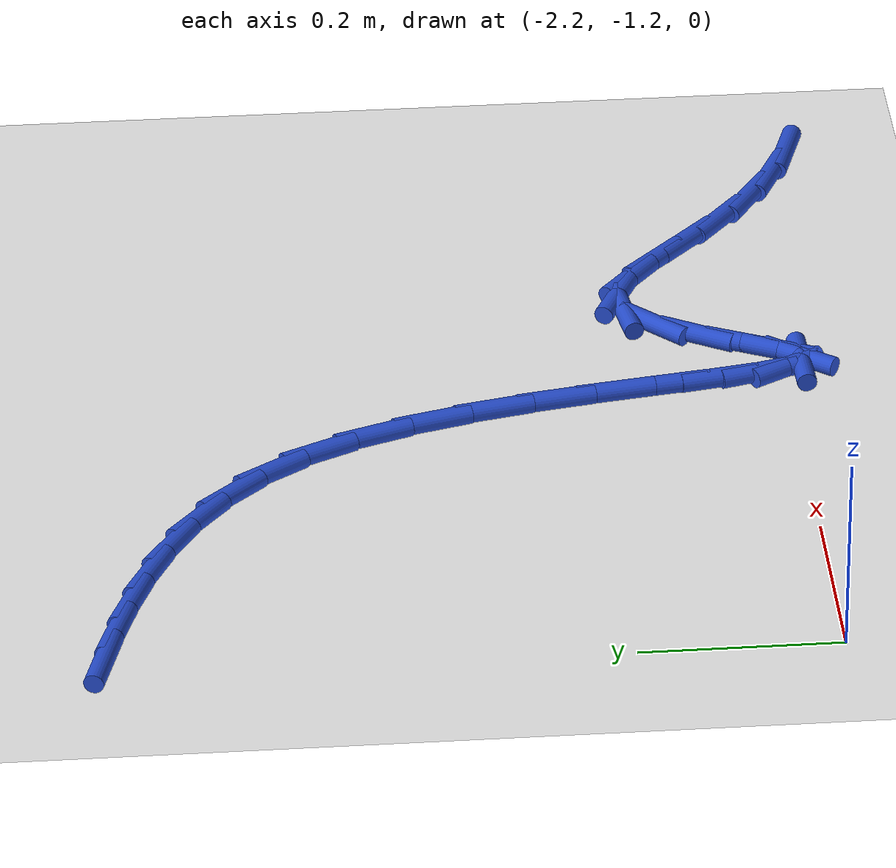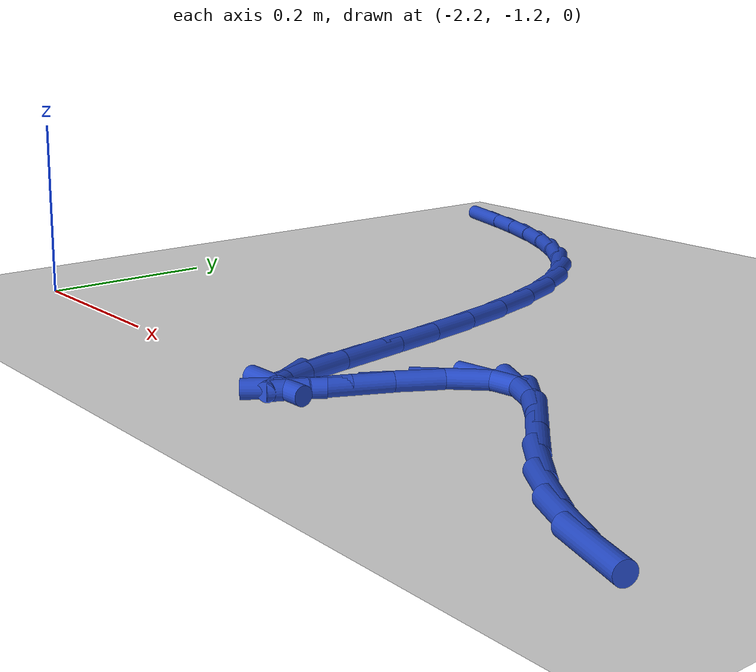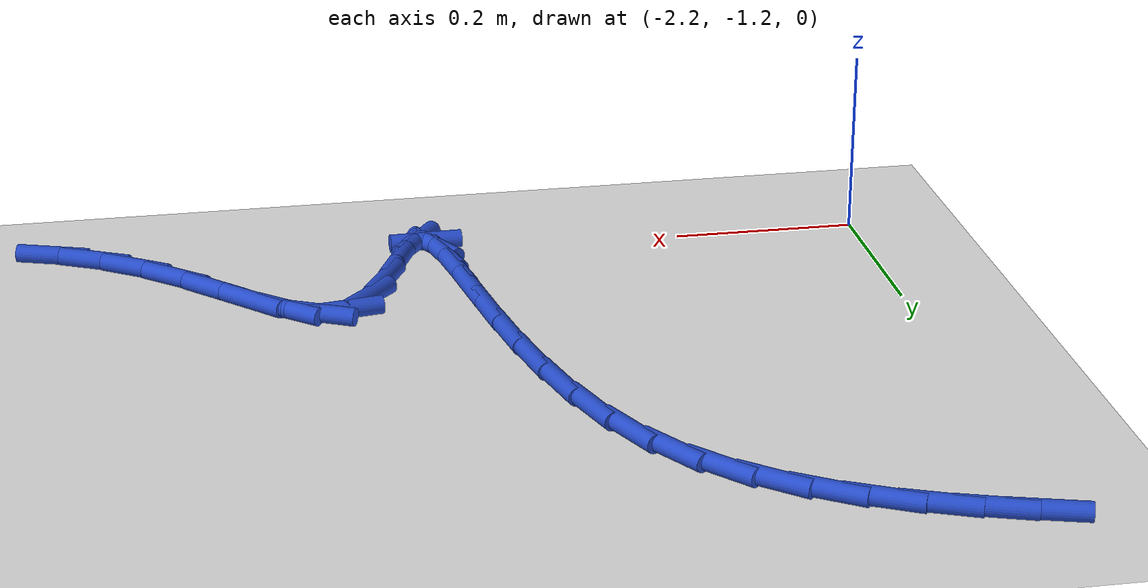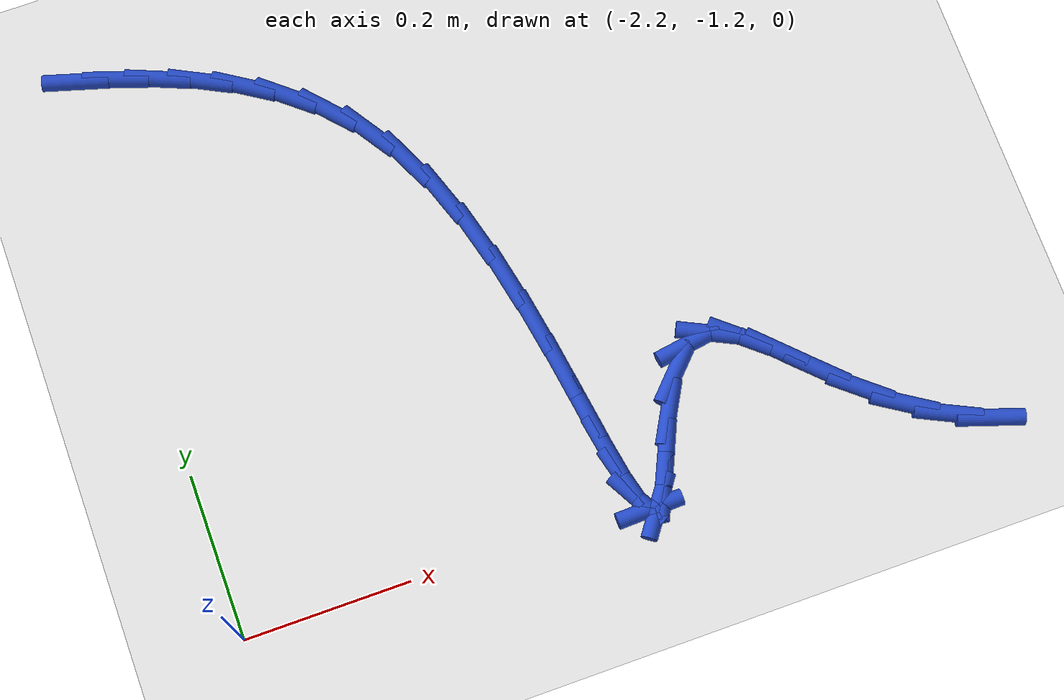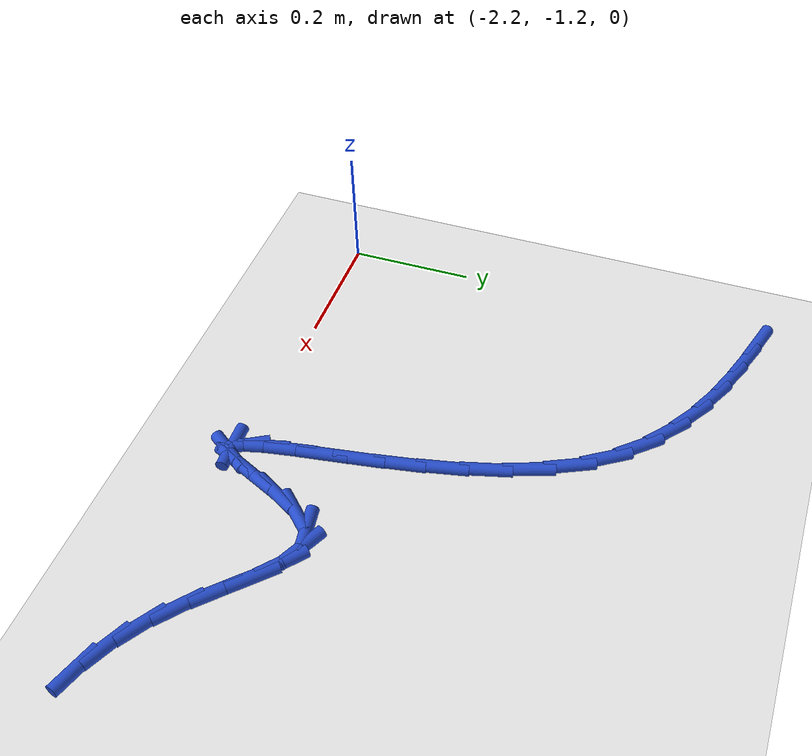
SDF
<sdf version="1.6">
 <world name="default">
  <model name="ground_plane">
   <static>1</static>
   <link name="link">
    <collision name="collision">
     <geometry><plane><normal>0 0 1</normal><size>100 100</size></plane></geometry>
     <surface><friction><ode><mu>100</mu><mu2>50</mu2></ode></friction></surface>
    </collision>
    <visual name="visual">
     <cast_shadows>0</cast_shadows>
     <geometry><plane><normal>0 0 1</normal><size>100 100</size></plane></geometry>
     <material>
      <script><uri>file://media/materials/scripts/gazebo.material</uri><name>Gazebo/WhiteGlow</name></script>
     </material>
    </visual>
   </link>
  </model>
  <model name="line">
   <link name="link_122">
    <pose>-2.184361438575416 -0.49433795415259824 0.01 0 1.57 -0.28565210446264355</pose>
    <collision name="collision">
     <geometry><cylinder><radius>0.01</radius><length>0.08</length></cylinder></geometry>
    </collision>
    <visual name="visual">
     <material>
      <script><name>Gazebo/Blue</name><uri>file://media/materials/scripts/gazebo.material</uri></script>
     </material>
     <geometry><cylinder><radius>0.01</radius><length>0.08</length></cylinder></geometry>
    </visual>
   </link>
   <link name="link_123">
    <pose>-2.1379317910600424 -0.5079735902099958 0.01 0 1.57 -0.32826283731042083</pose>
    <collision name="collision">
     <geometry><cylinder><radius>0.01</radius><length>0.08</length></cylinder></geometry>
    </collision>
    <visual name="visual">
     <material>
      <script><name>Gazebo/Blue</name><uri>file://media/materials/scripts/gazebo.material</uri></script>
     </material>
     <geometry><cylinder><radius>0.01</radius><length>0.08</length></cylinder></geometry>
    </visual>
   </link>
   <link name="link_124">
    <pose>-2.090292087886576 -0.5241989607777661 0.01 0 1.57 -0.38998099330129476</pose>
    <collision name="collision">
     <geometry><cylinder><radius>0.01</radius><length>0.08</length></cylinder></geometry>
    </collision>
    <visual name="visual">
     <material>
      <script><name>Gazebo/Blue</name><uri>file://media/materials/scripts/gazebo.material</uri></script>
     </material>
     <geometry><cylinder><radius>0.01</radius><length>0.08</length></cylinder></geometry>
    </visual>
   </link>
   <link name="link_125">
    <pose>-2.0425520192814623 -0.5438216899381036 0.01 0 1.57 -0.4715312053376735</pose>
    <collision name="collision">
     <geometry><cylinder><radius>0.01</radius><length>0.08</length></cylinder></geometry>
    </collision>
    <visual name="visual">
     <material>
      <script><name>Gazebo/Blue</name><uri>file://media/materials/scripts/gazebo.material</uri></script>
     </material>
     <geometry><cylinder><radius>0.01</radius><length>0.08</length></cylinder></geometry>
    </visual>
   </link>
   <link name="link_126">
    <pose>-1.9958212754711477 -0.5676494017732027 0.01 0 1.57 -0.5738924250984505</pose>
    <collision name="collision">
     <geometry><cylinder><radius>0.01</radius><length>0.08</length></cylinder></geometry>
    </collision>
    <visual name="visual">
     <material>
      <script><name>Gazebo/Blue</name><uri>file://media/materials/scripts/gazebo.material</uri></script>
     </material>
     <geometry><cylinder><radius>0.01</radius><length>0.08</length></cylinder></geometry>
    </visual>
   </link>
   <link name="link_127">
    <pose>-1.9512095466820776 -0.5964897203652576 0.01 0 1.57 -0.6972244586254711</pose>
    <collision name="collision">
     <geometry><cylinder><radius>0.01</radius><length>0.08</length></cylinder></geometry>
    </collision>
    <visual name="visual">
     <material>
      <script><name>Gazebo/Blue</name><uri>file://media/materials/scripts/gazebo.material</uri></script>
     </material>
     <geometry><cylinder><radius>0.01</radius><length>0.08</length></cylinder></geometry>
    </visual>
   </link>
   <link name="link_128">
    <pose>-1.909826523140699 -0.6311502697964628 0.01 0 1.57 -0.8395213290164908</pose>
    <collision name="collision">
     <geometry><cylinder><radius>0.01</radius><length>0.08</length></cylinder></geometry>
    </collision>
    <visual name="visual">
     <material>
      <script><name>Gazebo/Blue</name><uri>file://media/materials/scripts/gazebo.material</uri></script>
     </material>
     <geometry><cylinder><radius>0.01</radius><length>0.08</length></cylinder></geometry>
    </visual>
   </link>
   <link name="link_129">
    <pose>-1.872781895073457 -0.6724386741490127 0.01 0 1.57 -0.994944159421937</pose>
    <collision name="collision">
     <geometry><cylinder><radius>0.01</radius><length>0.08</length></cylinder></geometry>
    </collision>
    <visual name="visual">
     <material>
      <script><name>Gazebo/Blue</name><uri>file://media/materials/scripts/gazebo.material</uri></script>
     </material>
     <geometry><cylinder><radius>0.01</radius><length>0.08</length></cylinder></geometry>
    </visual>
   </link>
   <link name="link_130">
    <pose>-1.8411670851865451 -0.7211325632780391 0.01 0 1.57 -1.1355411119451633</pose>
    <collision name="collision">
     <geometry><cylinder><radius>0.01</radius><length>0.08</length></cylinder></geometry>
    </collision>
    <visual name="visual">
     <material>
      <script><name>Gazebo/Blue</name><uri>file://media/materials/scripts/gazebo.material</uri></script>
     </material>
     <geometry><cylinder><radius>0.01</radius><length>0.08</length></cylinder></geometry>
    </visual>
   </link>
   <link name="link_131">
    <pose>-1.8153056858490542 -0.7767488333891253 0.01 0 1.57 -1.2387001858734015</pose>
    <collision name="collision">
     <geometry><cylinder><radius>0.01</radius><length>0.08</length></cylinder></geometry>
    </collision>
    <visual name="visual">
     <material>
      <script><name>Gazebo/Blue</name><uri>file://media/materials/scripts/gazebo.material</uri></script>
     </material>
     <geometry><cylinder><radius>0.01</radius><length>0.08</length></cylinder></geometry>
    </visual>
   </link>
   <link name="link_132">
    <pose>-1.7944891363108404 -0.8371096440956332 0.01 0 1.57 -1.3131102194681292</pose>
    <collision name="collision">
     <geometry><cylinder><radius>0.01</radius><length>0.08</length></cylinder></geometry>
    </collision>
    <visual name="visual">
     <material>
      <script><name>Gazebo/Blue</name><uri>file://media/materials/scripts/gazebo.material</uri></script>
     </material>
     <geometry><cylinder><radius>0.01</radius><length>0.08</length></cylinder></geometry>
    </visual>
   </link>
   <link name="link_133">
    <pose>-1.7779362891618624 -0.8999179718525911 0.01 0 1.57 -1.3661032466133973</pose>
    <collision name="collision">
     <geometry><cylinder><radius>0.01</radius><length>0.08</length></cylinder></geometry>
    </collision>
    <visual name="visual">
     <material>
      <script><name>Gazebo/Blue</name><uri>file://media/materials/scripts/gazebo.material</uri></script>
     </material>
     <geometry><cylinder><radius>0.01</radius><length>0.08</length></cylinder></geometry>
    </visual>
   </link>
   <link name="link_134">
    <pose>-1.7648659969920806 -0.9628767931150278 0.01 0 1.57 -1.4019140387732072</pose>
    <collision name="collision">
     <geometry><cylinder><radius>0.01</radius><length>0.08</length></cylinder></geometry>
    </collision>
    <visual name="visual">
     <material>
      <script><name>Gazebo/Blue</name><uri>file://media/materials/scripts/gazebo.material</uri></script>
     </material>
     <geometry><cylinder><radius>0.01</radius><length>0.08</length></cylinder></geometry>
    </visual>
   </link>
   <link name="link_135">
    <pose>-1.7544971123914537 -1.0236890843379711 0.01 0 1.57 -1.4220223865522879</pose>
    <collision name="collision">
     <geometry><cylinder><radius>0.01</radius><length>0.08</length></cylinder></geometry>
    </collision>
    <visual name="visual">
     <material>
      <script><name>Gazebo/Blue</name><uri>file://media/materials/scripts/gazebo.material</uri></script>
     </material>
     <geometry><cylinder><radius>0.01</radius><length>0.08</length></cylinder></geometry>
    </visual>
   </link>
   <link name="link_136">
    <pose>-1.7460484879499414 -1.08005782197645 0.01 0 1.57 -1.4245621340071937</pose>
    <collision name="collision">
     <geometry><cylinder><radius>0.01</radius><length>0.08</length></cylinder></geometry>
    </collision>
    <visual name="visual">
     <material>
      <script><name>Gazebo/Blue</name><uri>file://media/materials/scripts/gazebo.material</uri></script>
     </material>
     <geometry><cylinder><radius>0.01</radius><length>0.08</length></cylinder></geometry>
    </visual>
   </link>
   <link name="link_137">
    <pose>-1.7387389762575025 -1.1296859824854923 0.01 0 1.57 -1.4011816469819414</pose>
    <collision name="collision">
     <geometry><cylinder><radius>0.01</radius><length>0.08</length></cylinder></geometry>
    </collision>
    <visual name="visual">
     <material>
      <script><name>Gazebo/Blue</name><uri>file://media/materials/scripts/gazebo.material</uri></script>
     </material>
     <geometry><cylinder><radius>0.01</radius><length>0.08</length></cylinder></geometry>
    </visual>
   </link>
   <link name="link_138">
    <pose>-1.7317874299040967 -1.1702765423201267 0.01 0 1.57 -1.3238644421237749</pose>
    <collision name="collision">
     <geometry><cylinder><radius>0.01</radius><length>0.08</length></cylinder></geometry>
    </collision>
    <visual name="visual">
     <material>
      <script><name>Gazebo/Blue</name><uri>file://media/materials/scripts/gazebo.material</uri></script>
     </material>
     <geometry><cylinder><radius>0.01</radius><length>0.08</length></cylinder></geometry>
    </visual>
   </link>
   <link name="link_139">
    <pose>-1.7244127014796833 -1.199532477935381 0.01 0 1.57 -1.0686560884903236</pose>
    <collision name="collision">
     <geometry><cylinder><radius>0.01</radius><length>0.08</length></cylinder></geometry>
    </collision>
    <visual name="visual">
     <material>
      <script><name>Gazebo/Blue</name><uri>file://media/materials/scripts/gazebo.material</uri></script>
     </material>
     <geometry><cylinder><radius>0.01</radius><length>0.08</length></cylinder></geometry>
    </visual>
   </link>
   <link name="link_140">
    <pose>-1.715833643574222 -1.2151567657862847 0.01 0 1.57 0.02880384997386008</pose>
    <collision name="collision">
     <geometry><cylinder><radius>0.01</radius><length>0.08</length></cylinder></geometry>
    </collision>
    <visual name="visual">
     <material>
      <script><name>Gazebo/Blue</name><uri>file://media/materials/scripts/gazebo.material</uri></script>
     </material>
     <geometry><cylinder><radius>0.01</radius><length>0.08</length></cylinder></geometry>
    </visual>
   </link>
   <link name="link_141">
    <pose>-1.7052691087776717 -1.214852382327865 0.01 0 1.57 0.9470987776433557</pose>
    <collision name="collision">
     <geometry><cylinder><radius>0.01</radius><length>0.08</length></cylinder></geometry>
    </collision>
    <visual name="visual">
     <material>
      <script><name>Gazebo/Blue</name><uri>file://media/materials/scripts/gazebo.material</uri></script>
     </material>
     <geometry><cylinder><radius>0.01</radius><length>0.08</length></cylinder></geometry>
    </visual>
   </link>
   <link name="link_142">
    <pose>-1.6919380929068764 -1.1963243669047987 0.01 0 1.57 1.1381280214256002</pose>
    <collision name="collision">
     <geometry><cylinder><radius>0.01</radius><length>0.08</length></cylinder></geometry>
    </collision>
    <visual name="visual">
     <material>
      <script><name>Gazebo/Blue</name><uri>file://media/materials/scripts/gazebo.material</uri></script>
     </material>
     <geometry><cylinder><radius>0.01</radius><length>0.08</length></cylinder></geometry>
    </visual>
   </link>
   <link name="link_143">
    <pose>-1.675264003974149 -1.160221897481186 0.01 0 1.57 1.1463221863602724</pose>
    <collision name="collision">
     <geometry><cylinder><radius>0.01</radius><length>0.08</length></cylinder></geometry>
    </collision>
    <visual name="visual">
     <material>
      <script><name>Gazebo/Blue</name><uri>file://media/materials/scripts/gazebo.material</uri></script>
     </material>
     <geometry><cylinder><radius>0.01</radius><length>0.08</length></cylinder></geometry>
    </visual>
   </link>
   <link name="link_144">
    <pose>-1.6552823158404901 -1.1160097058025982 0.01 0 1.57 1.0592045904168628</pose>
    <collision name="collision">
     <geometry><cylinder><radius>0.01</radius><length>0.08</length></cylinder></geometry>
    </collision>
    <visual name="visual">
     <material>
      <script><name>Gazebo/Blue</name><uri>file://media/materials/scripts/gazebo.material</uri></script>
     </material>
     <geometry><cylinder><radius>0.01</radius><length>0.08</length></cylinder></geometry>
    </visual>
   </link>
   <link name="link_145">
    <pose>-1.6321425729838221 -1.0747954770003194 0.01 0 1.57 0.8034282181039252</pose>
    <collision name="collision">
     <geometry><cylinder><radius>0.01</radius><length>0.08</length></cylinder></geometry>
    </collision>
    <visual name="visual">
     <material>
      <script><name>Gazebo/Blue</name><uri>file://media/materials/scripts/gazebo.material</uri></script>
     </material>
     <geometry><cylinder><radius>0.01</radius><length>0.08</length></cylinder></geometry>
    </visual>
   </link>
   <link name="link_146">
    <pose>-1.6059943198820694 -1.0476868962056365 0.01 0 1.57 0.15248464685349025</pose>
    <collision name="collision">
     <geometry><cylinder><radius>0.01</radius><length>0.08</length></cylinder></geometry>
    </collision>
    <visual name="visual">
     <material>
      <script><name>Gazebo/Blue</name><uri>file://media/materials/scripts/gazebo.material</uri></script>
     </material>
     <geometry><cylinder><radius>0.01</radius><length>0.08</length></cylinder></geometry>
    </visual>
   </link>
   <link name="link_147">
    <pose>-1.576986197557524 -1.043228998201677 0.01 0 1.57 -0.4505166098544359</pose>
    <collision name="collision">
     <geometry><cylinder><radius>0.01</radius><length>0.08</length></cylinder></geometry>
    </collision>
    <visual name="visual">
     <material>
      <script><name>Gazebo/Blue</name><uri>file://media/materials/scripts/gazebo.material</uri></script>
     </material>
     <geometry><cylinder><radius>0.01</radius><length>0.08</length></cylinder></geometry>
    </visual>
   </link>
   <link name="link_148">
    <pose>-1.5452628302951594 -1.05857334926038 0.01 0 1.57 -0.7041908228436067</pose>
    <collision name="collision">
     <geometry><cylinder><radius>0.01</radius><length>0.08</length></cylinder></geometry>
    </collision>
    <visual name="visual">
     <material>
      <script><name>Gazebo/Blue</name><uri>file://media/materials/scripts/gazebo.material</uri></script>
     </material>
     <geometry><cylinder><radius>0.01</radius><length>0.08</length></cylinder></geometry>
    </visual>
   </link>
   <link name="link_149">
    <pose>-1.5109677264839785 -1.0877062786403764 0.01 0 1.57 -0.7879022702656798</pose>
    <collision name="collision">
     <geometry><cylinder><radius>0.01</radius><length>0.08</length></cylinder></geometry>
    </collision>
    <visual name="visual">
     <material>
      <script><name>Gazebo/Blue</name><uri>file://media/materials/scripts/gazebo.material</uri></script>
     </material>
     <geometry><cylinder><radius>0.01</radius><length>0.08</length></cylinder></geometry>
    </visual>
   </link>
   <link name="link_150">
    <pose>-1.4742443944690702 -1.124613991044719 0.01 0 1.57 -0.7810294227627351</pose>
    <collision name="collision">
     <geometry><cylinder><radius>0.01</radius><length>0.08</length></cylinder></geometry>
    </collision>
    <visual name="visual">
     <material>
      <script><name>Gazebo/Blue</name><uri>file://media/materials/scripts/gazebo.material</uri></script>
     </material>
     <geometry><cylinder><radius>0.01</radius><length>0.08</length></cylinder></geometry>
    </visual>
   </link>
   <link name="link_151">
    <pose>-1.435236342595524 -1.1632826911764607 0.01 0 1.57 -0.6989223030192326</pose>
    <collision name="collision">
     <geometry><cylinder><radius>0.01</radius><length>0.08</length></cylinder></geometry>
    </collision>
    <visual name="visual">
     <material>
      <script><name>Gazebo/Blue</name><uri>file://media/materials/scripts/gazebo.material</uri></script>
     </material>
     <geometry><cylinder><radius>0.01</radius><length>0.08</length></cylinder></geometry>
    </visual>
   </link>
   <link name="link_152">
    <pose>-1.3940934935626026 -1.19786110737993 0.01 0 1.57 -0.5741215096621224</pose>
    <collision name="collision">
     <geometry><cylinder><radius>0.01</radius><length>0.08</length></cylinder></geometry>
    </collision>
    <visual name="visual">
     <material>
      <script><name>Gazebo/Blue</name><uri>file://media/materials/scripts/gazebo.material</uri></script>
     </material>
     <geometry><cylinder><radius>0.01</radius><length>0.08</length></cylinder></geometry>
    </visual>
   </link>
   <link name="link_153">
    <pose>-1.3510911573076771 -1.225674966019194 0.01 0 1.57 -0.4460886734572582</pose>
    <collision name="collision">
     <geometry><cylinder><radius>0.01</radius><length>0.08</length></cylinder></geometry>
    </collision>
    <visual name="visual">
     <material>
      <script><name>Gazebo/Blue</name><uri>file://media/materials/scripts/gazebo.material</uri></script>
     </material>
     <geometry><cylinder><radius>0.01</radius><length>0.08</length></cylinder></geometry>
    </visual>
   </link>
   <link name="link_154">
    <pose>-1.3066188389758526 -1.2469434135089745 0.01 0 1.57 -0.3190799197476925</pose>
    <collision name="collision">
     <geometry><cylinder><radius>0.01</radius><length>0.08</length></cylinder></geometry>
    </collision>
    <visual name="visual">
     <material>
      <script><name>Gazebo/Blue</name><uri>file://media/materials/scripts/gazebo.material</uri></script>
     </material>
     <geometry><cylinder><radius>0.01</radius><length>0.08</length></cylinder></geometry>
    </visual>
   </link>
  </model>
 </world>
</sdf>
